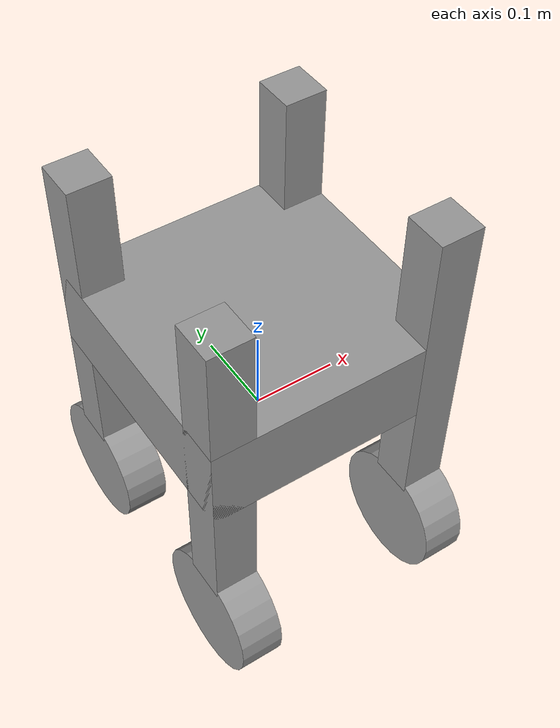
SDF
<?xml version='1.0'?>
<sdf version='1.6'>
  <model name='myrobo'>
    <link name='link_0'>
      <pose frame=''>-5.9e-05 2e-06 0.111111 0 -0 0</pose>
      <inertial>
        <mass>1</mass>
        <inertia>
          <ixx>0.166667</ixx>
          <ixy>0</ixy>
          <ixz>0</ixz>
          <iyy>0.166667</iyy>
          <iyz>0</iyz>
          <izz>0.166667</izz>
        </inertia>
        <pose frame=''>0 0 0 0 -0 0</pose>
      </inertial>
      <gravity>1</gravity>
      <self_collide>0</self_collide>
      <kinematic>0</kinematic>
      <visual name='visual'>
        <pose frame=''>0 0 0 0 -0 0</pose>
        <geometry>
          <box>
            <size>0.3 0.3 0.1</size>
          </box>
        </geometry>
        <material>
          <lighting>1</lighting>
          <script>
            <uri>file://media/materials/scripts/gazebo.material</uri>
            <name>Gazebo/Grey</name>
          </script>
          <ambient>0.3 0.3 0.3 1</ambient>
          <diffuse>0.7 0.7 0.7 1</diffuse>
          <specular>0.01 0.01 0.01 1</specular>
          <emissive>0 0 0 1</emissive>
          <shader type='vertex'>
            <normal_map>__default__</normal_map>
          </shader>
        </material>
        <transparency>0</transparency>
        <cast_shadows>1</cast_shadows>
      </visual>
      <collision name='collision'>
        <laser_retro>0</laser_retro>
        <max_contacts>10</max_contacts>
        <pose frame=''>0 0 0 0 -0 0</pose>
        <geometry>
          <box>
            <size>0.3 0.3 0.1</size>
          </box>
        </geometry>
        <surface>
          <friction>
            <ode>
              <mu>1</mu>
              <mu2>1</mu2>
              <fdir1>0 0 0</fdir1>
              <slip1>0</slip1>
              <slip2>0</slip2>
            </ode>
            <torsional>
              <coefficient>1</coefficient>
              <patch_radius>0</patch_radius>
              <surface_radius>0</surface_radius>
              <use_patch_radius>1</use_patch_radius>
              <ode>
                <slip>0</slip>
              </ode>
            </torsional>
          </friction>
          <bounce>
            <restitution_coefficient>0</restitution_coefficient>
            <threshold>1e+06</threshold>
          </bounce>
          <contact>
            <collide_without_contact>0</collide_without_contact>
            <collide_without_contact_bitmask>1</collide_without_contact_bitmask>
            <collide_bitmask>1</collide_bitmask>
            <ode>
              <soft_cfm>0</soft_cfm>
              <soft_erp>0.2</soft_erp>
              <kp>1e+13</kp>
              <kd>1</kd>
              <max_vel>0.01</max_vel>
              <min_depth>0</min_depth>
            </ode>
            <bullet>
              <split_impulse>1</split_impulse>
              <split_impulse_penetration_threshold>-0.01</split_impulse_penetration_threshold>
              <soft_cfm>0</soft_cfm>
              <soft_erp>0.2</soft_erp>
              <kp>1e+13</kp>
              <kd>1</kd>
            </bullet>
          </contact>
        </surface>
      </collision>
    </link>
    <link name='link_1'>
      <pose frame=''>-0.125059 -0.124998 0.111111 0 -0 0</pose>
      <inertial>
        <mass>1</mass>
        <inertia>
          <ixx>0.166667</ixx>
          <ixy>0</ixy>
          <ixz>0</ixz>
          <iyy>0.166667</iyy>
          <iyz>0</iyz>
          <izz>0.166667</izz>
        </inertia>
        <pose frame=''>0 0 0 0 -0 0</pose>
      </inertial>
      <gravity>1</gravity>
      <self_collide>0</self_collide>
      <kinematic>0</kinematic>
      <visual name='visual'>
        <pose frame=''>0 0 0 0 -0 0</pose>
        <geometry>
          <box>
            <size>0.05 0.05 0.375</size>
          </box>
        </geometry>
        <material>
          <lighting>1</lighting>
          <script>
            <uri>file://media/materials/scripts/gazebo.material</uri>
            <name>Gazebo/Grey</name>
          </script>
          <ambient>0.3 0.3 0.3 1</ambient>
          <diffuse>0.7 0.7 0.7 1</diffuse>
          <specular>0.01 0.01 0.01 1</specular>
          <emissive>0 0 0 1</emissive>
          <shader type='vertex'>
            <normal_map>__default__</normal_map>
          </shader>
        </material>
        <transparency>0</transparency>
        <cast_shadows>1</cast_shadows>
      </visual>
      <collision name='collision'>
        <laser_retro>0</laser_retro>
        <max_contacts>10</max_contacts>
        <pose frame=''>0 0 0 0 -0 0</pose>
        <geometry>
          <box>
            <size>0.05 0.05 0.375</size>
          </box>
        </geometry>
        <surface>
          <friction>
            <ode>
              <mu>1</mu>
              <mu2>1</mu2>
              <fdir1>0 0 0</fdir1>
              <slip1>0</slip1>
              <slip2>0</slip2>
            </ode>
            <torsional>
              <coefficient>1</coefficient>
              <patch_radius>0</patch_radius>
              <surface_radius>0</surface_radius>
              <use_patch_radius>1</use_patch_radius>
              <ode>
                <slip>0</slip>
              </ode>
            </torsional>
          </friction>
          <bounce>
            <restitution_coefficient>0</restitution_coefficient>
            <threshold>1e+06</threshold>
          </bounce>
          <contact>
            <collide_without_contact>0</collide_without_contact>
            <collide_without_contact_bitmask>1</collide_without_contact_bitmask>
            <collide_bitmask>1</collide_bitmask>
            <ode>
              <soft_cfm>0</soft_cfm>
              <soft_erp>0.2</soft_erp>
              <kp>1e+13</kp>
              <kd>1</kd>
              <max_vel>0.01</max_vel>
              <min_depth>0</min_depth>
            </ode>
            <bullet>
              <split_impulse>1</split_impulse>
              <split_impulse_penetration_threshold>-0.01</split_impulse_penetration_threshold>
              <soft_cfm>0</soft_cfm>
              <soft_erp>0.2</soft_erp>
              <kp>1e+13</kp>
              <kd>1</kd>
            </bullet>
          </contact>
        </surface>
      </collision>
    </link>
    <link name='link_1_clone'>
      <pose frame=''>-0.125059 0.125002 0.111111 0 -0 0</pose>
      <inertial>
        <mass>1</mass>
        <inertia>
          <ixx>0.166667</ixx>
          <ixy>0</ixy>
          <ixz>0</ixz>
          <iyy>0.166667</iyy>
          <iyz>0</iyz>
          <izz>0.166667</izz>
        </inertia>
        <pose frame=''>0 0 0 0 -0 0</pose>
      </inertial>
      <self_collide>0</self_collide>
      <kinematic>0</kinematic>
      <visual name='visual'>
        <pose frame=''>0 0 0 0 -0 0</pose>
        <geometry>
          <box>
            <size>0.05 0.05 0.375</size>
          </box>
        </geometry>
        <material>
          <lighting>1</lighting>
          <script>
            <uri>file://media/materials/scripts/gazebo.material</uri>
            <name>Gazebo/Grey</name>
          </script>
          <ambient>0.3 0.3 0.3 1</ambient>
          <diffuse>0.7 0.7 0.7 1</diffuse>
          <specular>0.01 0.01 0.01 1</specular>
          <emissive>0 0 0 1</emissive>
          <shader type='vertex'>
            <normal_map>__default__</normal_map>
          </shader>
        </material>
        <transparency>0</transparency>
        <cast_shadows>1</cast_shadows>
      </visual>
      <collision name='collision'>
        <laser_retro>0</laser_retro>
        <max_contacts>10</max_contacts>
        <pose frame=''>0 0 0 0 -0 0</pose>
        <geometry>
          <box>
            <size>0.05 0.05 0.375</size>
          </box>
        </geometry>
        <surface>
          <friction>
            <ode>
              <mu>1</mu>
              <mu2>1</mu2>
              <fdir1>0 0 0</fdir1>
              <slip1>0</slip1>
              <slip2>0</slip2>
            </ode>
            <torsional>
              <coefficient>1</coefficient>
              <patch_radius>0</patch_radius>
              <surface_radius>0</surface_radius>
              <use_patch_radius>1</use_patch_radius>
              <ode>
                <slip>0</slip>
              </ode>
            </torsional>
          </friction>
          <bounce>
            <restitution_coefficient>0</restitution_coefficient>
            <threshold>1e+06</threshold>
          </bounce>
          <contact>
            <collide_without_contact>0</collide_without_contact>
            <collide_without_contact_bitmask>1</collide_without_contact_bitmask>
            <collide_bitmask>1</collide_bitmask>
            <ode>
              <soft_cfm>0</soft_cfm>
              <soft_erp>0.2</soft_erp>
              <kp>1e+13</kp>
              <kd>1</kd>
              <max_vel>0.01</max_vel>
              <min_depth>0</min_depth>
            </ode>
            <bullet>
              <split_impulse>1</split_impulse>
              <split_impulse_penetration_threshold>-0.01</split_impulse_penetration_threshold>
              <soft_cfm>0</soft_cfm>
              <soft_erp>0.2</soft_erp>
              <kp>1e+13</kp>
              <kd>1</kd>
            </bullet>
          </contact>
        </surface>
      </collision>
    </link>
    <link name='link_1_clone_clone'>
      <pose frame=''>0.124941 -0.124998 0.111111 0 -0 0</pose>
      <inertial>
        <mass>1</mass>
        <inertia>
          <ixx>0.166667</ixx>
          <ixy>0</ixy>
          <ixz>0</ixz>
          <iyy>0.166667</iyy>
          <iyz>0</iyz>
          <izz>0.166667</izz>
        </inertia>
        <pose frame=''>0 0 0 0 -0 0</pose>
      </inertial>
      <self_collide>0</self_collide>
      <kinematic>0</kinematic>
      <visual name='visual'>
        <pose frame=''>0 0 0 0 -0 0</pose>
        <geometry>
          <box>
            <size>0.05 0.05 0.375</size>
          </box>
        </geometry>
        <material>
          <lighting>1</lighting>
          <script>
            <uri>file://media/materials/scripts/gazebo.material</uri>
            <name>Gazebo/Grey</name>
          </script>
          <ambient>0.3 0.3 0.3 1</ambient>
          <diffuse>0.7 0.7 0.7 1</diffuse>
          <specular>0.01 0.01 0.01 1</specular>
          <emissive>0 0 0 1</emissive>
          <shader type='vertex'>
            <normal_map>__default__</normal_map>
          </shader>
        </material>
        <transparency>0</transparency>
        <cast_shadows>1</cast_shadows>
      </visual>
      <collision name='collision'>
        <laser_retro>0</laser_retro>
        <max_contacts>10</max_contacts>
        <pose frame=''>0 0 0 0 -0 0</pose>
        <geometry>
          <box>
            <size>0.05 0.05 0.375</size>
          </box>
        </geometry>
        <surface>
          <friction>
            <ode>
              <mu>1</mu>
              <mu2>1</mu2>
              <fdir1>0 0 0</fdir1>
              <slip1>0</slip1>
              <slip2>0</slip2>
            </ode>
            <torsional>
              <coefficient>1</coefficient>
              <patch_radius>0</patch_radius>
              <surface_radius>0</surface_radius>
              <use_patch_radius>1</use_patch_radius>
              <ode>
                <slip>0</slip>
              </ode>
            </torsional>
          </friction>
          <bounce>
            <restitution_coefficient>0</restitution_coefficient>
            <threshold>1e+06</threshold>
          </bounce>
          <contact>
            <collide_without_contact>0</collide_without_contact>
            <collide_without_contact_bitmask>1</collide_without_contact_bitmask>
            <collide_bitmask>1</collide_bitmask>
            <ode>
              <soft_cfm>0</soft_cfm>
              <soft_erp>0.2</soft_erp>
              <kp>1e+13</kp>
              <kd>1</kd>
              <max_vel>0.01</max_vel>
              <min_depth>0</min_depth>
            </ode>
            <bullet>
              <split_impulse>1</split_impulse>
              <split_impulse_penetration_threshold>-0.01</split_impulse_penetration_threshold>
              <soft_cfm>0</soft_cfm>
              <soft_erp>0.2</soft_erp>
              <kp>1e+13</kp>
              <kd>1</kd>
            </bullet>
          </contact>
        </surface>
      </collision>
    </link>
    <link name='link_1_clone_clone_clone'>
      <pose frame=''>0.124941 0.125002 0.111111 0 -0 0</pose>
      <inertial>
        <mass>1</mass>
        <inertia>
          <ixx>0.166667</ixx>
          <ixy>0</ixy>
          <ixz>0</ixz>
          <iyy>0.166667</iyy>
          <iyz>0</iyz>
          <izz>0.166667</izz>
        </inertia>
        <pose frame=''>0 0 0 0 -0 0</pose>
      </inertial>
      <self_collide>0</self_collide>
      <kinematic>0</kinematic>
      <visual name='visual'>
        <pose frame=''>0 0 0 0 -0 0</pose>
        <geometry>
          <box>
            <size>0.05 0.05 0.375</size>
          </box>
        </geometry>
        <material>
          <lighting>1</lighting>
          <script>
            <uri>file://media/materials/scripts/gazebo.material</uri>
            <name>Gazebo/Grey</name>
          </script>
          <ambient>0.3 0.3 0.3 1</ambient>
          <diffuse>0.7 0.7 0.7 1</diffuse>
          <specular>0.01 0.01 0.01 1</specular>
          <emissive>0 0 0 1</emissive>
          <shader type='vertex'>
            <normal_map>__default__</normal_map>
          </shader>
        </material>
        <transparency>0</transparency>
        <cast_shadows>1</cast_shadows>
      </visual>
      <collision name='collision'>
        <laser_retro>0</laser_retro>
        <max_contacts>10</max_contacts>
        <pose frame=''>0 0 0 0 -0 0</pose>
        <geometry>
          <box>
            <size>0.05 0.05 0.375</size>
          </box>
        </geometry>
        <surface>
          <friction>
            <ode>
              <mu>1</mu>
              <mu2>1</mu2>
              <fdir1>0 0 0</fdir1>
              <slip1>0</slip1>
              <slip2>0</slip2>
            </ode>
            <torsional>
              <coefficient>1</coefficient>
              <patch_radius>0</patch_radius>
              <surface_radius>0</surface_radius>
              <use_patch_radius>1</use_patch_radius>
              <ode>
                <slip>0</slip>
              </ode>
            </torsional>
          </friction>
          <bounce>
            <restitution_coefficient>0</restitution_coefficient>
            <threshold>1e+06</threshold>
          </bounce>
          <contact>
            <collide_without_contact>0</collide_without_contact>
            <collide_without_contact_bitmask>1</collide_without_contact_bitmask>
            <collide_bitmask>1</collide_bitmask>
            <ode>
              <soft_cfm>0</soft_cfm>
              <soft_erp>0.2</soft_erp>
              <kp>1e+13</kp>
              <kd>1</kd>
              <max_vel>0.01</max_vel>
              <min_depth>0</min_depth>
            </ode>
            <bullet>
              <split_impulse>1</split_impulse>
              <split_impulse_penetration_threshold>-0.01</split_impulse_penetration_threshold>
              <soft_cfm>0</soft_cfm>
              <soft_erp>0.2</soft_erp>
              <kp>1e+13</kp>
              <kd>1</kd>
            </bullet>
          </contact>
        </surface>
      </collision>
    </link>
    <link name='link_2'>
      <pose frame=''>-0.124889 -0.125018 -0.138889 1.57 -0 1.57</pose>
      <inertial>
        <mass>1</mass>
        <inertia>
          <ixx>0.145833</ixx>
          <ixy>0</ixy>
          <ixz>0</ixz>
          <iyy>0.145833</iyy>
          <iyz>0</iyz>
          <izz>0.125</izz>
        </inertia>
        <pose frame=''>0 0 0 0 -0 0</pose>
      </inertial>
      <gravity>1</gravity>
      <self_collide>0</self_collide>
      <kinematic>0</kinematic>
      <visual name='visual'>
        <pose frame=''>0 0 0 0 -0 0</pose>
        <geometry>
          <cylinder>
            <radius>0.075</radius>
            <length>0.05</length>
          </cylinder>
        </geometry>
        <material>
          <lighting>1</lighting>
          <script>
            <uri>file://media/materials/scripts/gazebo.material</uri>
            <name>Gazebo/Grey</name>
          </script>
          <ambient>0.3 0.3 0.3 1</ambient>
          <diffuse>0.7 0.7 0.7 1</diffuse>
          <specular>0.01 0.01 0.01 1</specular>
          <emissive>0 0 0 1</emissive>
          <shader type='vertex'>
            <normal_map>__default__</normal_map>
          </shader>
        </material>
        <transparency>0</transparency>
        <cast_shadows>1</cast_shadows>
      </visual>
      <collision name='collision'>
        <laser_retro>0</laser_retro>
        <max_contacts>10</max_contacts>
        <pose frame=''>0 0 0 0 -0 0</pose>
        <geometry>
          <cylinder>
            <radius>0.075</radius>
            <length>0.05</length>
          </cylinder>
        </geometry>
        <surface>
          <friction>
            <ode>
              <mu>1</mu>
              <mu2>1</mu2>
              <fdir1>0 0 0</fdir1>
              <slip1>0</slip1>
              <slip2>0</slip2>
            </ode>
            <torsional>
              <coefficient>1</coefficient>
              <patch_radius>0</patch_radius>
              <surface_radius>0</surface_radius>
              <use_patch_radius>1</use_patch_radius>
              <ode>
                <slip>0</slip>
              </ode>
            </torsional>
          </friction>
          <bounce>
            <restitution_coefficient>0</restitution_coefficient>
            <threshold>1e+06</threshold>
          </bounce>
          <contact>
            <collide_without_contact>0</collide_without_contact>
            <collide_without_contact_bitmask>1</collide_without_contact_bitmask>
            <collide_bitmask>1</collide_bitmask>
            <ode>
              <soft_cfm>0</soft_cfm>
              <soft_erp>0.2</soft_erp>
              <kp>1e+13</kp>
              <kd>1</kd>
              <max_vel>0.01</max_vel>
              <min_depth>0</min_depth>
            </ode>
            <bullet>
              <split_impulse>1</split_impulse>
              <split_impulse_penetration_threshold>-0.01</split_impulse_penetration_threshold>
              <soft_cfm>0</soft_cfm>
              <soft_erp>0.2</soft_erp>
              <kp>1e+13</kp>
              <kd>1</kd>
            </bullet>
          </contact>
        </surface>
      </collision>
    </link>
    <link name='link_2_clone'>
      <pose frame=''>0.125061 -0.124998 -0.138889 1.57 -0 1.57</pose>
      <inertial>
        <mass>1</mass>
        <inertia>
          <ixx>0.145833</ixx>
          <ixy>0</ixy>
          <ixz>0</ixz>
          <iyy>0.145833</iyy>
          <iyz>0</iyz>
          <izz>0.125</izz>
        </inertia>
        <pose frame=''>0 0 0 0 -0 0</pose>
      </inertial>
      <self_collide>0</self_collide>
      <kinematic>0</kinematic>
      <visual name='visual'>
        <pose frame=''>0 0 0 0 -0 0</pose>
        <geometry>
          <cylinder>
            <radius>0.075</radius>
            <length>0.05</length>
          </cylinder>
        </geometry>
        <material>
          <lighting>1</lighting>
          <script>
            <uri>file://media/materials/scripts/gazebo.material</uri>
            <name>Gazebo/Grey</name>
          </script>
          <ambient>0.3 0.3 0.3 1</ambient>
          <diffuse>0.7 0.7 0.7 1</diffuse>
          <specular>0.01 0.01 0.01 1</specular>
          <emissive>0 0 0 1</emissive>
          <shader type='vertex'>
            <normal_map>__default__</normal_map>
          </shader>
        </material>
        <transparency>0</transparency>
        <cast_shadows>1</cast_shadows>
      </visual>
      <collision name='collision'>
        <laser_retro>0</laser_retro>
        <max_contacts>10</max_contacts>
        <pose frame=''>0 0 0 0 -0 0</pose>
        <geometry>
          <cylinder>
            <radius>0.075</radius>
            <length>0.05</length>
          </cylinder>
        </geometry>
        <surface>
          <friction>
            <ode>
              <mu>1</mu>
              <mu2>1</mu2>
              <fdir1>0 0 0</fdir1>
              <slip1>0</slip1>
              <slip2>0</slip2>
            </ode>
            <torsional>
              <coefficient>1</coefficient>
              <patch_radius>0</patch_radius>
              <surface_radius>0</surface_radius>
              <use_patch_radius>1</use_patch_radius>
              <ode>
                <slip>0</slip>
              </ode>
            </torsional>
          </friction>
          <bounce>
            <restitution_coefficient>0</restitution_coefficient>
            <threshold>1e+06</threshold>
          </bounce>
          <contact>
            <collide_without_contact>0</collide_without_contact>
            <collide_without_contact_bitmask>1</collide_without_contact_bitmask>
            <collide_bitmask>1</collide_bitmask>
            <ode>
              <soft_cfm>0</soft_cfm>
              <soft_erp>0.2</soft_erp>
              <kp>1e+13</kp>
              <kd>1</kd>
              <max_vel>0.01</max_vel>
              <min_depth>0</min_depth>
            </ode>
            <bullet>
              <split_impulse>1</split_impulse>
              <split_impulse_penetration_threshold>-0.01</split_impulse_penetration_threshold>
              <soft_cfm>0</soft_cfm>
              <soft_erp>0.2</soft_erp>
              <kp>1e+13</kp>
              <kd>1</kd>
            </bullet>
          </contact>
        </surface>
      </collision>
    </link>
    <link name='link_2_clone_0'>
      <pose frame=''>-0.124939 0.125002 -0.138889 1.57 -0 1.57</pose>
      <inertial>
        <mass>1</mass>
        <inertia>
          <ixx>0.145833</ixx>
          <ixy>0</ixy>
          <ixz>0</ixz>
          <iyy>0.145833</iyy>
          <iyz>0</iyz>
          <izz>0.125</izz>
        </inertia>
        <pose frame=''>0 0 0 0 -0 0</pose>
      </inertial>
      <self_collide>0</self_collide>
      <kinematic>0</kinematic>
      <visual name='visual'>
        <pose frame=''>0 0 0 0 -0 0</pose>
        <geometry>
          <cylinder>
            <radius>0.075</radius>
            <length>0.05</length>
          </cylinder>
        </geometry>
        <material>
          <lighting>1</lighting>
          <script>
            <uri>file://media/materials/scripts/gazebo.material</uri>
            <name>Gazebo/Grey</name>
          </script>
          <ambient>0.3 0.3 0.3 1</ambient>
          <diffuse>0.7 0.7 0.7 1</diffuse>
          <specular>0.01 0.01 0.01 1</specular>
          <emissive>0 0 0 1</emissive>
          <shader type='vertex'>
            <normal_map>__default__</normal_map>
          </shader>
        </material>
        <transparency>0</transparency>
        <cast_shadows>1</cast_shadows>
      </visual>
      <collision name='collision'>
        <laser_retro>0</laser_retro>
        <max_contacts>10</max_contacts>
        <pose frame=''>0 0 0 0 -0 0</pose>
        <geometry>
          <cylinder>
            <radius>0.075</radius>
            <length>0.05</length>
          </cylinder>
        </geometry>
        <surface>
          <friction>
            <ode>
              <mu>1</mu>
              <mu2>1</mu2>
              <fdir1>0 0 0</fdir1>
              <slip1>0</slip1>
              <slip2>0</slip2>
            </ode>
            <torsional>
              <coefficient>1</coefficient>
              <patch_radius>0</patch_radius>
              <surface_radius>0</surface_radius>
              <use_patch_radius>1</use_patch_radius>
              <ode>
                <slip>0</slip>
              </ode>
            </torsional>
          </friction>
          <bounce>
            <restitution_coefficient>0</restitution_coefficient>
            <threshold>1e+06</threshold>
          </bounce>
          <contact>
            <collide_without_contact>0</collide_without_contact>
            <collide_without_contact_bitmask>1</collide_without_contact_bitmask>
            <collide_bitmask>1</collide_bitmask>
            <ode>
              <soft_cfm>0</soft_cfm>
              <soft_erp>0.2</soft_erp>
              <kp>1e+13</kp>
              <kd>1</kd>
              <max_vel>0.01</max_vel>
              <min_depth>0</min_depth>
            </ode>
            <bullet>
              <split_impulse>1</split_impulse>
              <split_impulse_penetration_threshold>-0.01</split_impulse_penetration_threshold>
              <soft_cfm>0</soft_cfm>
              <soft_erp>0.2</soft_erp>
              <kp>1e+13</kp>
              <kd>1</kd>
            </bullet>
          </contact>
        </surface>
      </collision>
    </link>
    <link name='link_2_clone_0_clone'>
      <pose frame=''>0.125061 0.125002 -0.138889 1.57 -0 1.57</pose>
      <inertial>
        <mass>1</mass>
        <inertia>
          <ixx>0.145833</ixx>
          <ixy>0</ixy>
          <ixz>0</ixz>
          <iyy>0.145833</iyy>
          <iyz>0</iyz>
          <izz>0.125</izz>
        </inertia>
        <pose frame=''>0 0 0 0 -0 0</pose>
      </inertial>
      <self_collide>0</self_collide>
      <kinematic>0</kinematic>
      <visual name='visual'>
        <pose frame=''>0 0 0 0 -0 0</pose>
        <geometry>
          <cylinder>
            <radius>0.075</radius>
            <length>0.05</length>
          </cylinder>
        </geometry>
        <material>
          <lighting>1</lighting>
          <script>
            <uri>file://media/materials/scripts/gazebo.material</uri>
            <name>Gazebo/Grey</name>
          </script>
          <ambient>0.3 0.3 0.3 1</ambient>
          <diffuse>0.7 0.7 0.7 1</diffuse>
          <specular>0.01 0.01 0.01 1</specular>
          <emissive>0 0 0 1</emissive>
          <shader type='vertex'>
            <normal_map>__default__</normal_map>
          </shader>
        </material>
        <transparency>0</transparency>
        <cast_shadows>1</cast_shadows>
      </visual>
      <collision name='collision'>
        <laser_retro>0</laser_retro>
        <max_contacts>10</max_contacts>
        <pose frame=''>0 0 0 0 -0 0</pose>
        <geometry>
          <cylinder>
            <radius>0.075</radius>
            <length>0.05</length>
          </cylinder>
        </geometry>
        <surface>
          <friction>
            <ode>
              <mu>1</mu>
              <mu2>1</mu2>
              <fdir1>0 0 0</fdir1>
              <slip1>0</slip1>
              <slip2>0</slip2>
            </ode>
            <torsional>
              <coefficient>1</coefficient>
              <patch_radius>0</patch_radius>
              <surface_radius>0</surface_radius>
              <use_patch_radius>1</use_patch_radius>
              <ode>
                <slip>0</slip>
              </ode>
            </torsional>
          </friction>
          <bounce>
            <restitution_coefficient>0</restitution_coefficient>
            <threshold>1e+06</threshold>
          </bounce>
          <contact>
            <collide_without_contact>0</collide_without_contact>
            <collide_without_contact_bitmask>1</collide_without_contact_bitmask>
            <collide_bitmask>1</collide_bitmask>
            <ode>
              <soft_cfm>0</soft_cfm>
              <soft_erp>0.2</soft_erp>
              <kp>1e+13</kp>
              <kd>1</kd>
              <max_vel>0.01</max_vel>
              <min_depth>0</min_depth>
            </ode>
            <bullet>
              <split_impulse>1</split_impulse>
              <split_impulse_penetration_threshold>-0.01</split_impulse_penetration_threshold>
              <soft_cfm>0</soft_cfm>
              <soft_erp>0.2</soft_erp>
              <kp>1e+13</kp>
              <kd>1</kd>
            </bullet>
          </contact>
        </surface>
      </collision>
    </link>
    <joint name='link_0_JOINT_1' type='fixed'>
      <parent>link_0</parent>
      <child>link_1</child>
      <pose frame=''>0 0 0 -0.03 0 0</pose>
      <physics>
        <ode>
          <limit>
            <cfm>0</cfm>
            <erp>0.2</erp>
          </limit>
          <suspension>
            <cfm>0</cfm>
            <erp>0.2</erp>
          </suspension>
        </ode>
      </physics>
    </joint>
    <joint name='link_0_JOINT_4' type='fixed'>
      <parent>link_0</parent>
      <child>link_1_clone</child>
      <pose frame=''>0 0 0 0 -0 0</pose>
      <physics>
        <ode>
          <limit>
            <cfm>0</cfm>
            <erp>0.2</erp>
          </limit>
          <suspension>
            <cfm>0</cfm>
            <erp>0.2</erp>
          </suspension>
        </ode>
      </physics>
    </joint>
    <joint name='link_0_JOINT_5' type='fixed'>
      <parent>link_0</parent>
      <child>link_1_clone_clone</child>
      <pose frame=''>0 0 0 0 -0 0</pose>
      <physics>
        <ode>
          <limit>
            <cfm>0</cfm>
            <erp>0.2</erp>
          </limit>
          <suspension>
            <cfm>0</cfm>
            <erp>0.2</erp>
          </suspension>
        </ode>
      </physics>
    </joint>
    <joint name='link_0_JOINT_6' type='fixed'>
      <parent>link_0</parent>
      <child>link_1_clone_clone_clone</child>
      <pose frame=''>0 0 0 0 -0 0</pose>
      <physics>
        <ode>
          <limit>
            <cfm>0</cfm>
            <erp>0.2</erp>
          </limit>
          <suspension>
            <cfm>0</cfm>
            <erp>0.2</erp>
          </suspension>
        </ode>
      </physics>
    </joint>
    <joint name='link_1_JOINT_7' type='revolute'>
      <parent>link_1</parent>
      <child>link_2</child>
      <pose frame=''>0 0 0 0 -0 0</pose>
      <axis>
        <xyz>0 0 -1</xyz>
        <use_parent_model_frame>0</use_parent_model_frame>
        <limit>
          <lower>-1.79769e+308</lower>
          <upper>1.79769e+308</upper>
          <effort>-1</effort>
          <velocity>-1</velocity>
        </limit>
        <dynamics>
          <spring_reference>0</spring_reference>
          <spring_stiffness>0</spring_stiffness>
          <damping>0</damping>
          <friction>0</friction>
        </dynamics>
      </axis>
      <physics>
        <ode>
          <limit>
            <cfm>0</cfm>
            <erp>0.2</erp>
          </limit>
          <suspension>
            <cfm>0</cfm>
            <erp>0.2</erp>
          </suspension>
        </ode>
      </physics>
    </joint>
    <joint name='link_1_clone_JOINT_9' type='revolute'>
      <parent>link_1_clone</parent>
      <child>link_2_clone_0</child>
      <pose frame=''>0 0 0 0 -0 0</pose>
      <axis>
        <xyz>0 0 -1</xyz>
        <use_parent_model_frame>0</use_parent_model_frame>
        <limit>
          <lower>-1.79769e+308</lower>
          <upper>1.79769e+308</upper>
          <effort>-1</effort>
          <velocity>-1</velocity>
        </limit>
        <dynamics>
          <spring_reference>0</spring_reference>
          <spring_stiffness>0</spring_stiffness>
          <damping>0</damping>
          <friction>0</friction>
        </dynamics>
      </axis>
      <physics>
        <ode>
          <limit>
            <cfm>0</cfm>
            <erp>0.2</erp>
          </limit>
          <suspension>
            <cfm>0</cfm>
            <erp>0.2</erp>
          </suspension>
        </ode>
      </physics>
    </joint>
    <joint name='link_1_clone_clone_JOINT_8' type='revolute'>
      <parent>link_1_clone_clone</parent>
      <child>link_2_clone</child>
      <pose frame=''>0 0 0 -0.01 0 0</pose>
      <axis>
        <xyz>0 0 -1</xyz>
        <use_parent_model_frame>0</use_parent_model_frame>
        <limit>
          <lower>-1.79769e+308</lower>
          <upper>1.79769e+308</upper>
          <effort>-1</effort>
          <velocity>-1</velocity>
        </limit>
        <dynamics>
          <spring_reference>0</spring_reference>
          <spring_stiffness>0</spring_stiffness>
          <damping>0</damping>
          <friction>0</friction>
        </dynamics>
      </axis>
      <physics>
        <ode>
          <limit>
            <cfm>0</cfm>
            <erp>0.2</erp>
          </limit>
          <suspension>
            <cfm>0</cfm>
            <erp>0.2</erp>
          </suspension>
        </ode>
      </physics>
    </joint>
    <joint name='link_1_clone_clone_clone_JOINT_10' type='revolute'>
      <parent>link_1_clone_clone_clone</parent>
      <child>link_2_clone_0_clone</child>
      <pose frame=''>0 0 0 0 -0 0</pose>
      <axis>
        <xyz>-0 -0 -1</xyz>
        <use_parent_model_frame>0</use_parent_model_frame>
        <limit>
          <lower>-1.79769e+308</lower>
          <upper>1.79769e+308</upper>
          <effort>-1</effort>
          <velocity>-1</velocity>
        </limit>
        <dynamics>
          <spring_reference>0</spring_reference>
          <spring_stiffness>0</spring_stiffness>
          <damping>0</damping>
        </dynamics>
      </axis>
      <physics>
        <ode>
          <limit>
            <cfm>0</cfm>
            <erp>0.2</erp>
          </limit>
          <suspension>
            <cfm>0</cfm>
            <erp>0.2</erp>
          </suspension>
        </ode>
      </physics>
    </joint>
    <static>0</static>
    <allow_auto_disable>1</allow_auto_disable>
  </model>
</sdf>
